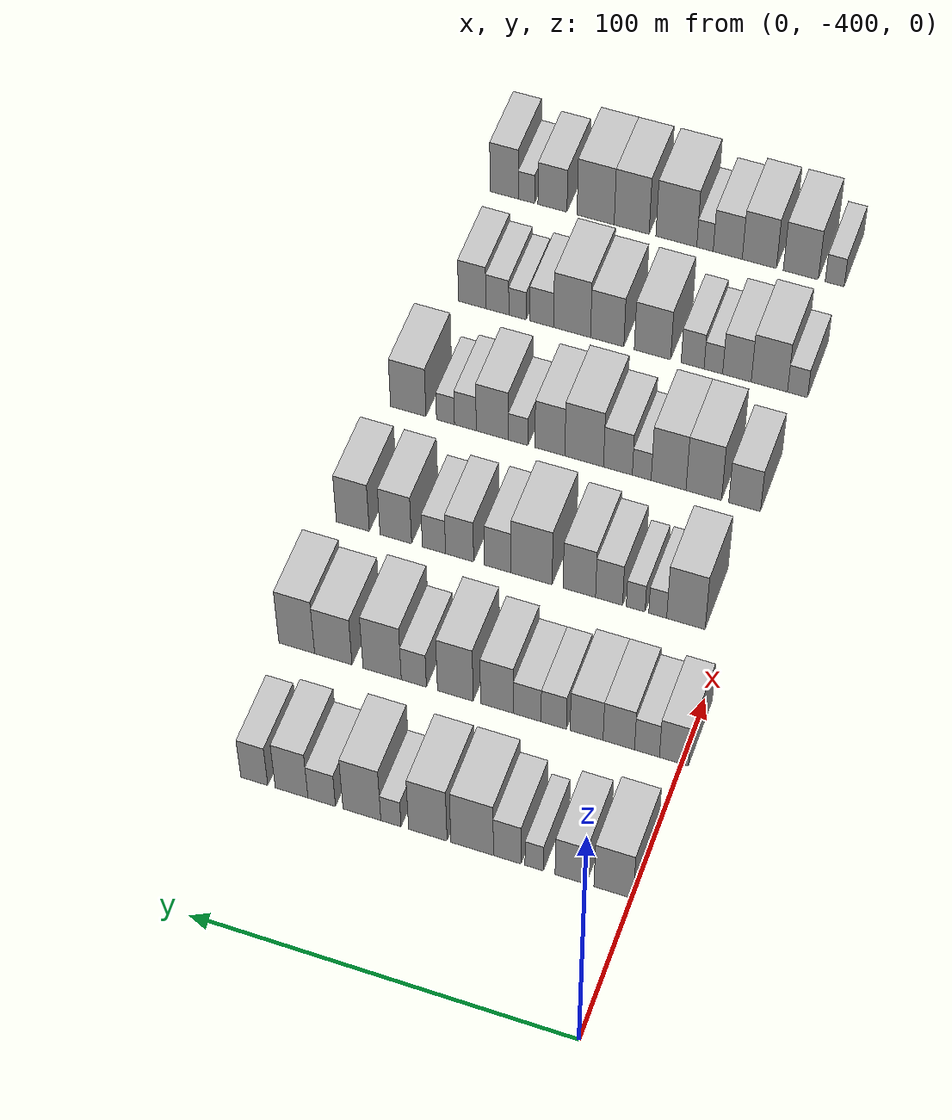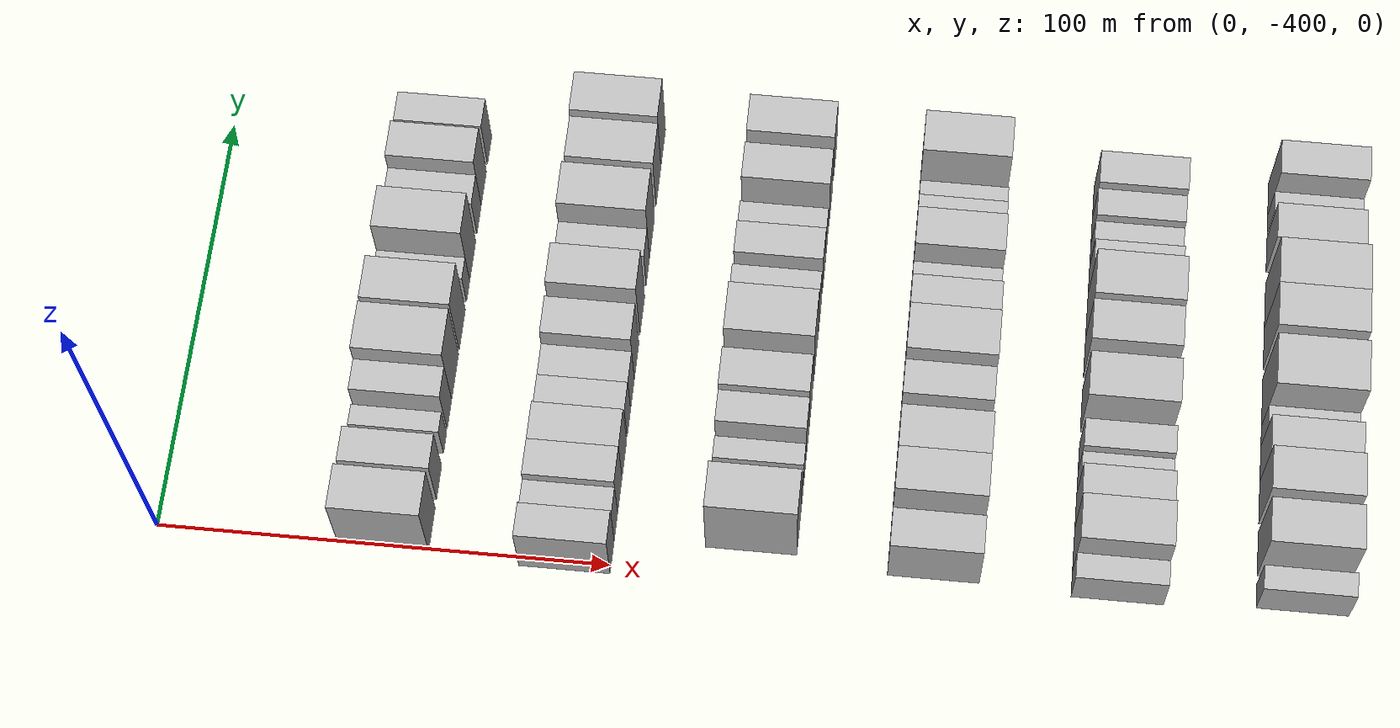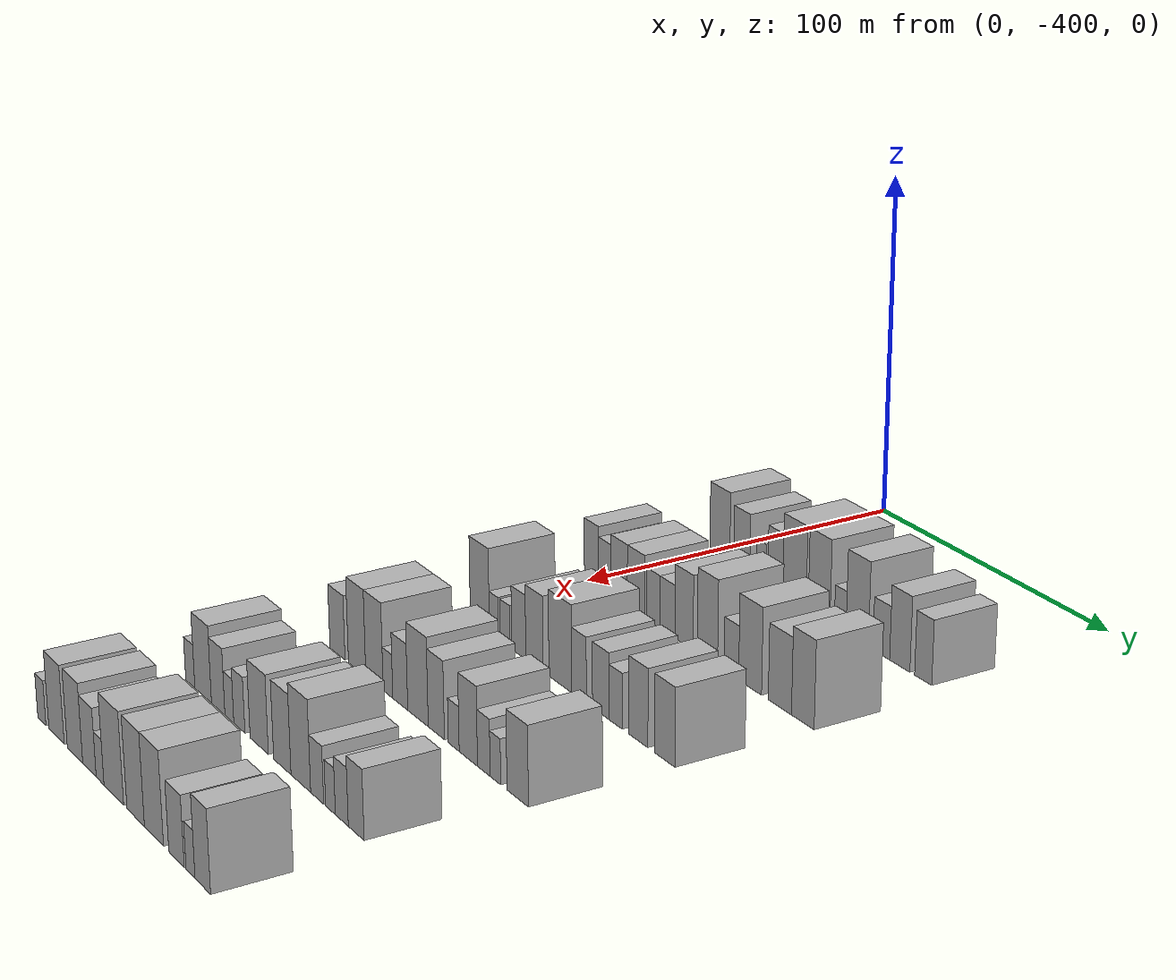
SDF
<sdf version="1.6">
 <world name="default">
  <model name="building_24">
   <static>1</static>
   <pose>50.0000 -395.3235 0 0.000000 0.000000 0.000000</pose>
   <link name="link">
    <pose>0 0 10.50 0 0 0</pose>
    <collision name="collision"><geometry><box><size>20.0000 10.1227 21.0000</size></box></geometry></collision>
    <visual name="visual">
     <cast_shadows>0</cast_shadows>
     <geometry><box><size>20.0000 10.1227 21.0000</size></box></geometry>
     <material>
      <script>
       <uri>model://HANNAS_wall/materials/scripts</uri>
       <uri>model://HANNAS_wall/materials/textures</uri>
       <name>vrc/HANNAS_wall</name>
      </script>
     </material>
    </visual>
   </link>
  </model>
  <model name="building_25">
   <static>1</static>
   <pose>50.0000 -384.2467 0 0.000000 0.000000 0.000000</pose>
   <link name="link">
    <pose>0 0 9.00 0 0 0</pose>
    <collision name="collision"><geometry><box><size>20.0000 8.0308 18.0000</size></box></geometry></collision>
    <visual name="visual">
     <cast_shadows>0</cast_shadows>
     <geometry><box><size>20.0000 8.0308 18.0000</size></box></geometry>
     <material>
      <script>
       <uri>model://HANNAS_wall/materials/scripts</uri>
       <uri>model://HANNAS_wall/materials/textures</uri>
       <name>vrc/HANNAS_wall</name>
      </script>
     </material>
    </visual>
   </link>
  </model>
  <model name="building_26">
   <static>1</static>
   <pose>50.0000 -374.8311 0 0.000000 0.000000 0.000000</pose>
   <link name="link">
    <pose>0 0 6.00 0 0 0</pose>
    <collision name="collision"><geometry><box><size>20.0000 4.8004 12.0000</size></box></geometry></collision>
    <visual name="visual">
     <cast_shadows>0</cast_shadows>
     <geometry><box><size>20.0000 4.8004 12.0000</size></box></geometry>
     <material>
      <script>
       <uri>model://HANNAS_wall/materials/scripts</uri>
       <uri>model://HANNAS_wall/materials/textures</uri>
       <name>vrc/HANNAS_wall</name>
      </script>
     </material>
    </visual>
   </link>
  </model>
  <model name="building_27">
   <static>1</static>
   <pose>50.0000 -367.8223 0 0.000000 0.000000 0.000000</pose>
   <link name="link">
    <pose>0 0 9.00 0 0 0</pose>
    <collision name="collision"><geometry><box><size>20.0000 7.2173 18.0000</size></box></geometry></collision>
    <visual name="visual">
     <cast_shadows>0</cast_shadows>
     <geometry><box><size>20.0000 7.2173 18.0000</size></box></geometry>
     <material>
      <script>
       <uri>model://HANNAS_wall/materials/scripts</uri>
       <uri>model://HANNAS_wall/materials/textures</uri>
       <name>vrc/HANNAS_wall</name>
      </script>
     </material>
    </visual>
   </link>
  </model>
  <model name="building_28">
   <static>1</static>
   <pose>50.0000 -358.6477 0 0.000000 0.000000 0.000000</pose>
   <link name="link">
    <pose>0 0 12.00 0 0 0</pose>
    <collision name="collision"><geometry><box><size>20.0000 11.1320 24.0000</size></box></geometry></collision>
    <visual name="visual">
     <cast_shadows>0</cast_shadows>
     <geometry><box><size>20.0000 11.1320 24.0000</size></box></geometry>
     <material>
      <script>
       <uri>model://HANNAS_wall/materials/scripts</uri>
       <uri>model://HANNAS_wall/materials/textures</uri>
       <name>vrc/HANNAS_wall</name>
      </script>
     </material>
    </visual>
   </link>
  </model>
  <model name="building_29">
   <static>1</static>
   <pose>50.0000 -347.0237 0 0.000000 0.000000 0.000000</pose>
   <link name="link">
    <pose>0 0 12.00 0 0 0</pose>
    <collision name="collision"><geometry><box><size>20.0000 10.1159 24.0000</size></box></geometry></collision>
    <visual name="visual">
     <cast_shadows>0</cast_shadows>
     <geometry><box><size>20.0000 10.1159 24.0000</size></box></geometry>
     <material>
      <script>
       <uri>model://HANNAS_wall/materials/scripts</uri>
       <uri>model://HANNAS_wall/materials/textures</uri>
       <name>vrc/HANNAS_wall</name>
      </script>
     </material>
    </visual>
   </link>
  </model>
  <model name="building_30">
   <static>1</static>
   <pose>50.0000 -337.2994 0 0.000000 0.000000 0.000000</pose>
   <link name="link">
    <pose>0 0 6.00 0 0 0</pose>
    <collision name="collision"><geometry><box><size>20.0000 5.3329 12.0000</size></box></geometry></collision>
    <visual name="visual">
     <cast_shadows>0</cast_shadows>
     <geometry><box><size>20.0000 5.3329 12.0000</size></box></geometry>
     <material>
      <script>
       <uri>model://HANNAS_wall/materials/scripts</uri>
       <uri>model://HANNAS_wall/materials/textures</uri>
       <name>vrc/HANNAS_wall</name>
      </script>
     </material>
    </visual>
   </link>
  </model>
  <model name="building_31">
   <static>1</static>
   <pose>50.0000 -329.6168 0 0.000000 0.000000 0.000000</pose>
   <link name="link">
    <pose>0 0 12.00 0 0 0</pose>
    <collision name="collision"><geometry><box><size>20.0000 10.0321 24.0000</size></box></geometry></collision>
    <visual name="visual">
     <cast_shadows>0</cast_shadows>
     <geometry><box><size>20.0000 10.0321 24.0000</size></box></geometry>
     <material>
      <script>
       <uri>model://HANNAS_wall/materials/scripts</uri>
       <uri>model://HANNAS_wall/materials/textures</uri>
       <name>vrc/HANNAS_wall</name>
      </script>
     </material>
    </visual>
   </link>
  </model>
  <model name="building_32">
   <static>1</static>
   <pose>50.0000 -318.9343 0 0.000000 0.000000 0.000000</pose>
   <link name="link">
    <pose>0 0 7.50 0 0 0</pose>
    <collision name="collision"><geometry><box><size>20.0000 7.3329 15.0000</size></box></geometry></collision>
    <visual name="visual">
     <cast_shadows>0</cast_shadows>
     <geometry><box><size>20.0000 7.3329 15.0000</size></box></geometry>
     <material>
      <script>
       <uri>model://HANNAS_wall/materials/scripts</uri>
       <uri>model://HANNAS_wall/materials/textures</uri>
       <name>vrc/HANNAS_wall</name>
      </script>
     </material>
    </visual>
   </link>
  </model>
  <model name="building_33">
   <static>1</static>
   <pose>50.0000 -310.8922 0 0.000000 0.000000 0.000000</pose>
   <link name="link">
    <pose>0 0 10.50 0 0 0</pose>
    <collision name="collision"><geometry><box><size>20.0000 8.7513 21.0000</size></box></geometry></collision>
    <visual name="visual">
     <cast_shadows>0</cast_shadows>
     <geometry><box><size>20.0000 8.7513 21.0000</size></box></geometry>
     <material>
      <script>
       <uri>model://HANNAS_wall/materials/scripts</uri>
       <uri>model://HANNAS_wall/materials/textures</uri>
       <name>vrc/HANNAS_wall</name>
      </script>
     </material>
    </visual>
   </link>
  </model>
  <model name="building_34">
   <static>1</static>
   <pose>50.0000 -300.9000 0 0.000000 0.000000 0.000000</pose>
   <link name="link">
    <pose>0 0 9.00 0 0 0</pose>
    <collision name="collision"><geometry><box><size>20.0000 7.2331 18.0000</size></box></geometry></collision>
    <visual name="visual">
     <cast_shadows>0</cast_shadows>
     <geometry><box><size>20.0000 7.2331 18.0000</size></box></geometry>
     <material>
      <script>
       <uri>model://HANNAS_wall/materials/scripts</uri>
       <uri>model://HANNAS_wall/materials/textures</uri>
       <name>vrc/HANNAS_wall</name>
      </script>
     </material>
    </visual>
   </link>
  </model>
  <model name="building_153">
   <static>1</static>
   <pose>90.0000 -398.0143 0 0.000000 0.000000 0.000000</pose>
   <link name="link">
    <pose>0 0 9.00 0 0 0</pose>
    <collision name="collision"><geometry><box><size>20.0000 7.6323 18.0000</size></box></geometry></collision>
    <visual name="visual">
     <cast_shadows>0</cast_shadows>
     <geometry><box><size>20.0000 7.6323 18.0000</size></box></geometry>
     <material>
      <script>
       <uri>model://HANNAS_wall/materials/scripts</uri>
       <uri>model://HANNAS_wall/materials/textures</uri>
       <name>vrc/HANNAS_wall</name>
      </script>
     </material>
    </visual>
   </link>
  </model>
  <model name="building_154">
   <static>1</static>
   <pose>90.0000 -390.9142 0 0.000000 0.000000 0.000000</pose>
   <link name="link">
    <pose>0 0 7.50 0 0 0</pose>
    <collision name="collision"><geometry><box><size>20.0000 6.5679 15.0000</size></box></geometry></collision>
    <visual name="visual">
     <cast_shadows>0</cast_shadows>
     <geometry><box><size>20.0000 6.5679 15.0000</size></box></geometry>
     <material>
      <script>
       <uri>model://HANNAS_wall/materials/scripts</uri>
       <uri>model://HANNAS_wall/materials/textures</uri>
       <name>vrc/HANNAS_wall</name>
      </script>
     </material>
    </visual>
   </link>
  </model>
  <model name="building_155">
   <static>1</static>
   <pose>90.0000 -383.4702 0 0.000000 0.000000 0.000000</pose>
   <link name="link">
    <pose>0 0 9.00 0 0 0</pose>
    <collision name="collision"><geometry><box><size>20.0000 8.3200 18.0000</size></box></geometry></collision>
    <visual name="visual">
     <cast_shadows>0</cast_shadows>
     <geometry><box><size>20.0000 8.3200 18.0000</size></box></geometry>
     <material>
      <script>
       <uri>model://HANNAS_wall/materials/scripts</uri>
       <uri>model://HANNAS_wall/materials/textures</uri>
       <name>vrc/HANNAS_wall</name>
      </script>
     </material>
    </visual>
   </link>
  </model>
  <model name="building_156">
   <static>1</static>
   <pose>90.0000 -374.9344 0 0.000000 0.000000 0.000000</pose>
   <link name="link">
    <pose>0 0 9.00 0 0 0</pose>
    <collision name="collision"><geometry><box><size>20.0000 8.7517 18.0000</size></box></geometry></collision>
    <visual name="visual">
     <cast_shadows>0</cast_shadows>
     <geometry><box><size>20.0000 8.7517 18.0000</size></box></geometry>
     <material>
      <script>
       <uri>model://HANNAS_wall/materials/scripts</uri>
       <uri>model://HANNAS_wall/materials/textures</uri>
       <name>vrc/HANNAS_wall</name>
      </script>
     </material>
    </visual>
   </link>
  </model>
  <model name="building_157">
   <static>1</static>
   <pose>90.0000 -366.1807 0 0.000000 0.000000 0.000000</pose>
   <link name="link">
    <pose>0 0 7.50 0 0 0</pose>
    <collision name="collision"><geometry><box><size>20.0000 6.7557 15.0000</size></box></geometry></collision>
    <visual name="visual">
     <cast_shadows>0</cast_shadows>
     <geometry><box><size>20.0000 6.7557 15.0000</size></box></geometry>
     <material>
      <script>
       <uri>model://HANNAS_wall/materials/scripts</uri>
       <uri>model://HANNAS_wall/materials/textures</uri>
       <name>vrc/HANNAS_wall</name>
      </script>
     </material>
    </visual>
   </link>
  </model>
  <model name="building_158">
   <static>1</static>
   <pose>90.0000 -359.0996 0 0.000000 0.000000 0.000000</pose>
   <link name="link">
    <pose>0 0 7.50 0 0 0</pose>
    <collision name="collision"><geometry><box><size>20.0000 7.4064 15.0000</size></box></geometry></collision>
    <visual name="visual">
     <cast_shadows>0</cast_shadows>
     <geometry><box><size>20.0000 7.4064 15.0000</size></box></geometry>
     <material>
      <script>
       <uri>model://HANNAS_wall/materials/scripts</uri>
       <uri>model://HANNAS_wall/materials/textures</uri>
       <name>vrc/HANNAS_wall</name>
      </script>
     </material>
    </visual>
   </link>
  </model>
  <model name="building_159">
   <static>1</static>
   <pose>90.0000 -350.9977 0 0.000000 0.000000 0.000000</pose>
   <link name="link">
    <pose>0 0 10.50 0 0 0</pose>
    <collision name="collision"><geometry><box><size>20.0000 8.7975 21.0000</size></box></geometry></collision>
    <visual name="visual">
     <cast_shadows>0</cast_shadows>
     <geometry><box><size>20.0000 8.7975 21.0000</size></box></geometry>
     <material>
      <script>
       <uri>model://HANNAS_wall/materials/scripts</uri>
       <uri>model://HANNAS_wall/materials/textures</uri>
       <name>vrc/HANNAS_wall</name>
      </script>
     </material>
    </visual>
   </link>
  </model>
  <model name="building_160">
   <static>1</static>
   <pose>90.0000 -339.7776 0 0.000000 0.000000 0.000000</pose>
   <link name="link">
    <pose>0 0 12.00 0 0 0</pose>
    <collision name="collision"><geometry><box><size>20.0000 9.6427 24.0000</size></box></geometry></collision>
    <visual name="visual">
     <cast_shadows>0</cast_shadows>
     <geometry><box><size>20.0000 9.6427 24.0000</size></box></geometry>
     <material>
      <script>
       <uri>model://HANNAS_wall/materials/scripts</uri>
       <uri>model://HANNAS_wall/materials/textures</uri>
       <name>vrc/HANNAS_wall</name>
      </script>
     </material>
    </visual>
   </link>
  </model>
  <model name="building_161">
   <static>1</static>
   <pose>90.0000 -328.5496 0 0.000000 0.000000 0.000000</pose>
   <link name="link">
    <pose>0 0 7.50 0 0 0</pose>
    <collision name="collision"><geometry><box><size>20.0000 6.8134 15.0000</size></box></geometry></collision>
    <visual name="visual">
     <cast_shadows>0</cast_shadows>
     <geometry><box><size>20.0000 6.8134 15.0000</size></box></geometry>
     <material>
      <script>
       <uri>model://HANNAS_wall/materials/scripts</uri>
       <uri>model://HANNAS_wall/materials/textures</uri>
       <name>vrc/HANNAS_wall</name>
      </script>
     </material>
    </visual>
   </link>
  </model>
  <model name="building_162">
   <static>1</static>
   <pose>90.0000 -319.9287 0 0.000000 0.000000 0.000000</pose>
   <link name="link">
    <pose>0 0 12.00 0 0 0</pose>
    <collision name="collision"><geometry><box><size>20.0000 10.4284 24.0000</size></box></geometry></collision>
    <visual name="visual">
     <cast_shadows>0</cast_shadows>
     <geometry><box><size>20.0000 10.4284 24.0000</size></box></geometry>
     <material>
      <script>
       <uri>model://HANNAS_wall/materials/scripts</uri>
       <uri>model://HANNAS_wall/materials/textures</uri>
       <name>vrc/HANNAS_wall</name>
      </script>
     </material>
    </visual>
   </link>
  </model>
  <model name="building_163">
   <static>1</static>
   <pose>90.0000 -306.5840 0 0.000000 0.000000 0.000000</pose>
   <link name="link">
    <pose>0 0 10.50 0 0 0</pose>
    <collision name="collision"><geometry><box><size>20.0000 10.2610 21.0000</size></box></geometry></collision>
    <visual name="visual">
     <cast_shadows>0</cast_shadows>
     <geometry><box><size>20.0000 10.2610 21.0000</size></box></geometry>
     <material>
      <script>
       <uri>model://HANNAS_wall/materials/scripts</uri>
       <uri>model://HANNAS_wall/materials/textures</uri>
       <name>vrc/HANNAS_wall</name>
      </script>
     </material>
    </visual>
   </link>
  </model>
  <model name="building_164">
   <static>1</static>
   <pose>90.0000 -296.5458 0 0.000000 0.000000 0.000000</pose>
   <link name="link">
    <pose>0 0 12.00 0 0 0</pose>
    <collision name="collision"><geometry><box><size>20.0000 9.8153 24.0000</size></box></geometry></collision>
    <visual name="visual">
     <cast_shadows>0</cast_shadows>
     <geometry><box><size>20.0000 9.8153 24.0000</size></box></geometry>
     <material>
      <script>
       <uri>model://HANNAS_wall/materials/scripts</uri>
       <uri>model://HANNAS_wall/materials/textures</uri>
       <name>vrc/HANNAS_wall</name>
      </script>
     </material>
    </visual>
   </link>
  </model>
  <model name="building_295">
   <static>1</static>
   <pose>130.0000 -388.5037 0 0.000000 0.000000 0.000000</pose>
   <link name="link">
    <pose>0 0 12.00 0 0 0</pose>
    <collision name="collision"><geometry><box><size>20.0000 10.4047 24.0000</size></box></geometry></collision>
    <visual name="visual">
     <cast_shadows>0</cast_shadows>
     <geometry><box><size>20.0000 10.4047 24.0000</size></box></geometry>
     <material>
      <script>
       <uri>model://HANNAS_wall/materials/scripts</uri>
       <uri>model://HANNAS_wall/materials/textures</uri>
       <name>vrc/HANNAS_wall</name>
      </script>
     </material>
    </visual>
   </link>
  </model>
  <model name="building_296">
   <static>1</static>
   <pose>130.0000 -380.8718 0 0.000000 0.000000 0.000000</pose>
   <link name="link">
    <pose>0 0 6.00 0 0 0</pose>
    <collision name="collision"><geometry><box><size>20.0000 4.8590 12.0000</size></box></geometry></collision>
    <visual name="visual">
     <cast_shadows>0</cast_shadows>
     <geometry><box><size>20.0000 4.8590 12.0000</size></box></geometry>
     <material>
      <script>
       <uri>model://HANNAS_wall/materials/scripts</uri>
       <uri>model://HANNAS_wall/materials/textures</uri>
       <name>vrc/HANNAS_wall</name>
      </script>
     </material>
    </visual>
   </link>
  </model>
  <model name="building_297">
   <static>1</static>
   <pose>130.0000 -374.8850 0 0.000000 0.000000 0.000000</pose>
   <link name="link">
    <pose>0 0 6.00 0 0 0</pose>
    <collision name="collision"><geometry><box><size>20.0000 5.1148 12.0000</size></box></geometry></collision>
    <visual name="visual">
     <cast_shadows>0</cast_shadows>
     <geometry><box><size>20.0000 5.1148 12.0000</size></box></geometry>
     <material>
      <script>
       <uri>model://HANNAS_wall/materials/scripts</uri>
       <uri>model://HANNAS_wall/materials/textures</uri>
       <name>vrc/HANNAS_wall</name>
      </script>
     </material>
    </visual>
   </link>
  </model>
  <model name="building_298">
   <static>1</static>
   <pose>130.0000 -367.6358 0 0.000000 0.000000 0.000000</pose>
   <link name="link">
    <pose>0 0 9.00 0 0 0</pose>
    <collision name="collision"><geometry><box><size>20.0000 7.3835 18.0000</size></box></geometry></collision>
    <visual name="visual">
     <cast_shadows>0</cast_shadows>
     <geometry><box><size>20.0000 7.3835 18.0000</size></box></geometry>
     <material>
      <script>
       <uri>model://HANNAS_wall/materials/scripts</uri>
       <uri>model://HANNAS_wall/materials/textures</uri>
       <name>vrc/HANNAS_wall</name>
      </script>
     </material>
    </visual>
   </link>
  </model>
  <model name="building_299">
   <static>1</static>
   <pose>130.0000 -359.5038 0 0.000000 0.000000 0.000000</pose>
   <link name="link">
    <pose>0 0 10.50 0 0 0</pose>
    <collision name="collision"><geometry><box><size>20.0000 8.8806 21.0000</size></box></geometry></collision>
    <visual name="visual">
     <cast_shadows>0</cast_shadows>
     <geometry><box><size>20.0000 8.8806 21.0000</size></box></geometry>
     <material>
      <script>
       <uri>model://HANNAS_wall/materials/scripts</uri>
       <uri>model://HANNAS_wall/materials/textures</uri>
       <name>vrc/HANNAS_wall</name>
      </script>
     </material>
    </visual>
   </link>
  </model>
  <model name="building_300">
   <static>1</static>
   <pose>130.0000 -346.3968 0 0.000000 0.000000 0.000000</pose>
   <link name="link">
    <pose>0 0 12.00 0 0 0</pose>
    <collision name="collision"><geometry><box><size>20.0000 11.3335 24.0000</size></box></geometry></collision>
    <visual name="visual">
     <cast_shadows>0</cast_shadows>
     <geometry><box><size>20.0000 11.3335 24.0000</size></box></geometry>
     <material>
      <script>
       <uri>model://HANNAS_wall/materials/scripts</uri>
       <uri>model://HANNAS_wall/materials/textures</uri>
       <name>vrc/HANNAS_wall</name>
      </script>
     </material>
    </visual>
   </link>
  </model>
  <model name="building_301">
   <static>1</static>
   <pose>130.0000 -337.0668 0 0.000000 0.000000 0.000000</pose>
   <link name="link">
    <pose>0 0 9.00 0 0 0</pose>
    <collision name="collision"><geometry><box><size>20.0000 7.3266 18.0000</size></box></geometry></collision>
    <visual name="visual">
     <cast_shadows>0</cast_shadows>
     <geometry><box><size>20.0000 7.3266 18.0000</size></box></geometry>
     <material>
      <script>
       <uri>model://HANNAS_wall/materials/scripts</uri>
       <uri>model://HANNAS_wall/materials/textures</uri>
       <name>vrc/HANNAS_wall</name>
      </script>
     </material>
    </visual>
   </link>
  </model>
  <model name="building_302">
   <static>1</static>
   <pose>130.0000 -326.5060 0 0.000000 0.000000 0.000000</pose>
   <link name="link">
    <pose>0 0 9.00 0 0 0</pose>
    <collision name="collision"><geometry><box><size>20.0000 7.7950 18.0000</size></box></geometry></collision>
    <visual name="visual">
     <cast_shadows>0</cast_shadows>
     <geometry><box><size>20.0000 7.7950 18.0000</size></box></geometry>
     <material>
      <script>
       <uri>model://HANNAS_wall/materials/scripts</uri>
       <uri>model://HANNAS_wall/materials/textures</uri>
       <name>vrc/HANNAS_wall</name>
      </script>
     </material>
    </visual>
   </link>
  </model>
  <model name="building_303">
   <static>1</static>
   <pose>130.0000 -319.3804 0 0.000000 0.000000 0.000000</pose>
   <link name="link">
    <pose>0 0 7.50 0 0 0</pose>
    <collision name="collision"><geometry><box><size>20.0000 6.4562 15.0000</size></box></geometry></collision>
    <visual name="visual">
     <cast_shadows>0</cast_shadows>
     <geometry><box><size>20.0000 6.4562 15.0000</size></box></geometry>
     <material>
      <script>
       <uri>model://HANNAS_wall/materials/scripts</uri>
       <uri>model://HANNAS_wall/materials/textures</uri>
       <name>vrc/HANNAS_wall</name>
      </script>
     </material>
    </visual>
   </link>
  </model>
  <model name="building_304">
   <static>1</static>
   <pose>130.0000 -308.7238 0 0.000000 0.000000 0.000000</pose>
   <link name="link">
    <pose>0 0 10.50 0 0 0</pose>
    <collision name="collision"><geometry><box><size>20.0000 8.8570 21.0000</size></box></geometry></collision>
    <visual name="visual">
     <cast_shadows>0</cast_shadows>
     <geometry><box><size>20.0000 8.8570 21.0000</size></box></geometry>
     <material>
      <script>
       <uri>model://HANNAS_wall/materials/scripts</uri>
       <uri>model://HANNAS_wall/materials/textures</uri>
       <name>vrc/HANNAS_wall</name>
      </script>
     </material>
    </visual>
   </link>
  </model>
  <model name="building_305">
   <static>1</static>
   <pose>130.0000 -296.6509 0 0.000000 0.000000 0.000000</pose>
   <link name="link">
    <pose>0 0 10.50 0 0 0</pose>
    <collision name="collision"><geometry><box><size>20.0000 9.2887 21.0000</size></box></geometry></collision>
    <visual name="visual">
     <cast_shadows>0</cast_shadows>
     <geometry><box><size>20.0000 9.2887 21.0000</size></box></geometry>
     <material>
      <script>
       <uri>model://HANNAS_wall/materials/scripts</uri>
       <uri>model://HANNAS_wall/materials/textures</uri>
       <name>vrc/HANNAS_wall</name>
      </script>
     </material>
    </visual>
   </link>
  </model>
  <model name="building_433">
   <static>1</static>
   <pose>170.0000 -392.0845 0 0.000000 0.000000 0.000000</pose>
   <link name="link">
    <pose>0 0 9.00 0 0 0</pose>
    <collision name="collision"><geometry><box><size>20.0000 8.7571 18.0000</size></box></geometry></collision>
    <visual name="visual">
     <cast_shadows>0</cast_shadows>
     <geometry><box><size>20.0000 8.7571 18.0000</size></box></geometry>
     <material>
      <script>
       <uri>model://HANNAS_wall/materials/scripts</uri>
       <uri>model://HANNAS_wall/materials/textures</uri>
       <name>vrc/HANNAS_wall</name>
      </script>
     </material>
    </visual>
   </link>
  </model>
  <model name="building_434">
   <static>1</static>
   <pose>170.0000 -380.7752 0 0.000000 0.000000 0.000000</pose>
   <link name="link">
    <pose>0 0 12.00 0 0 0</pose>
    <collision name="collision"><geometry><box><size>20.0000 9.8614 24.0000</size></box></geometry></collision>
    <visual name="visual">
     <cast_shadows>0</cast_shadows>
     <geometry><box><size>20.0000 9.8614 24.0000</size></box></geometry>
     <material>
      <script>
       <uri>model://HANNAS_wall/materials/scripts</uri>
       <uri>model://HANNAS_wall/materials/textures</uri>
       <name>vrc/HANNAS_wall</name>
      </script>
     </material>
    </visual>
   </link>
  </model>
  <model name="building_435">
   <static>1</static>
   <pose>170.0000 -370.9908 0 0.000000 0.000000 0.000000</pose>
   <link name="link">
    <pose>0 0 12.00 0 0 0</pose>
    <collision name="collision"><geometry><box><size>20.0000 9.7075 24.0000</size></box></geometry></collision>
    <visual name="visual">
     <cast_shadows>0</cast_shadows>
     <geometry><box><size>20.0000 9.7075 24.0000</size></box></geometry>
     <material>
      <script>
       <uri>model://HANNAS_wall/materials/scripts</uri>
       <uri>model://HANNAS_wall/materials/textures</uri>
       <name>vrc/HANNAS_wall</name>
      </script>
     </material>
    </visual>
   </link>
  </model>
  <model name="building_436">
   <static>1</static>
   <pose>170.0000 -363.5128 0 0.000000 0.000000 0.000000</pose>
   <link name="link">
    <pose>0 0 6.00 0 0 0</pose>
    <collision name="collision"><geometry><box><size>20.0000 5.2486 12.0000</size></box></geometry></collision>
    <visual name="visual">
     <cast_shadows>0</cast_shadows>
     <geometry><box><size>20.0000 5.2486 12.0000</size></box></geometry>
     <material>
      <script>
       <uri>model://HANNAS_wall/materials/scripts</uri>
       <uri>model://HANNAS_wall/materials/textures</uri>
       <name>vrc/HANNAS_wall</name>
      </script>
     </material>
    </visual>
   </link>
  </model>
  <model name="building_437">
   <static>1</static>
   <pose>170.0000 -356.8444 0 0.000000 0.000000 0.000000</pose>
   <link name="link">
    <pose>0 0 9.00 0 0 0</pose>
    <collision name="collision"><geometry><box><size>20.0000 8.0882 18.0000</size></box></geometry></collision>
    <visual name="visual">
     <cast_shadows>0</cast_shadows>
     <geometry><box><size>20.0000 8.0882 18.0000</size></box></geometry>
     <material>
      <script>
       <uri>model://HANNAS_wall/materials/scripts</uri>
       <uri>model://HANNAS_wall/materials/textures</uri>
       <name>vrc/HANNAS_wall</name>
      </script>
     </material>
    </visual>
   </link>
  </model>
  <model name="building_438">
   <static>1</static>
   <pose>170.0000 -347.3635 0 0.000000 0.000000 0.000000</pose>
   <link name="link">
    <pose>0 0 12.00 0 0 0</pose>
    <collision name="collision"><geometry><box><size>20.0000 10.8737 24.0000</size></box></geometry></collision>
    <visual name="visual">
     <cast_shadows>0</cast_shadows>
     <geometry><box><size>20.0000 10.8737 24.0000</size></box></geometry>
     <material>
      <script>
       <uri>model://HANNAS_wall/materials/scripts</uri>
       <uri>model://HANNAS_wall/materials/textures</uri>
       <name>vrc/HANNAS_wall</name>
      </script>
     </material>
    </visual>
   </link>
  </model>
  <model name="building_439">
   <static>1</static>
   <pose>170.0000 -337.7231 0 0.000000 0.000000 0.000000</pose>
   <link name="link">
    <pose>0 0 10.50 0 0 0</pose>
    <collision name="collision"><geometry><box><size>20.0000 8.4072 21.0000</size></box></geometry></collision>
    <visual name="visual">
     <cast_shadows>0</cast_shadows>
     <geometry><box><size>20.0000 8.4072 21.0000</size></box></geometry>
     <material>
      <script>
       <uri>model://HANNAS_wall/materials/scripts</uri>
       <uri>model://HANNAS_wall/materials/textures</uri>
       <name>vrc/HANNAS_wall</name>
      </script>
     </material>
    </visual>
   </link>
  </model>
  <model name="building_440">
   <static>1</static>
   <pose>170.0000 -328.7533 0 0.000000 0.000000 0.000000</pose>
   <link name="link">
    <pose>0 0 6.00 0 0 0</pose>
    <collision name="collision"><geometry><box><size>20.0000 5.5322 12.0000</size></box></geometry></collision>
    <visual name="visual">
     <cast_shadows>0</cast_shadows>
     <geometry><box><size>20.0000 5.5322 12.0000</size></box></geometry>
     <material>
      <script>
       <uri>model://HANNAS_wall/materials/scripts</uri>
       <uri>model://HANNAS_wall/materials/textures</uri>
       <name>vrc/HANNAS_wall</name>
      </script>
     </material>
    </visual>
   </link>
  </model>
  <model name="building_441">
   <static>1</static>
   <pose>170.0000 -321.4134 0 0.000000 0.000000 0.000000</pose>
   <link name="link">
    <pose>0 0 10.50 0 0 0</pose>
    <collision name="collision"><geometry><box><size>20.0000 9.1477 21.0000</size></box></geometry></collision>
    <visual name="visual">
     <cast_shadows>0</cast_shadows>
     <geometry><box><size>20.0000 9.1477 21.0000</size></box></geometry>
     <material>
      <script>
       <uri>model://HANNAS_wall/materials/scripts</uri>
       <uri>model://HANNAS_wall/materials/textures</uri>
       <name>vrc/HANNAS_wall</name>
      </script>
     </material>
    </visual>
   </link>
  </model>
  <model name="building_442">
   <static>1</static>
   <pose>170.0000 -313.7286 0 0.000000 0.000000 0.000000</pose>
   <link name="link">
    <pose>0 0 7.50 0 0 0</pose>
    <collision name="collision"><geometry><box><size>20.0000 6.2219 15.0000</size></box></geometry></collision>
    <visual name="visual">
     <cast_shadows>0</cast_shadows>
     <geometry><box><size>20.0000 6.2219 15.0000</size></box></geometry>
     <material>
      <script>
       <uri>model://HANNAS_wall/materials/scripts</uri>
       <uri>model://HANNAS_wall/materials/textures</uri>
       <name>vrc/HANNAS_wall</name>
      </script>
     </material>
    </visual>
   </link>
  </model>
  <model name="building_443">
   <static>1</static>
   <pose>170.0000 -308.0451 0 0.000000 0.000000 0.000000</pose>
   <link name="link">
    <pose>0 0 6.00 0 0 0</pose>
    <collision name="collision"><geometry><box><size>20.0000 5.1451 12.0000</size></box></geometry></collision>
    <visual name="visual">
     <cast_shadows>0</cast_shadows>
     <geometry><box><size>20.0000 5.1451 12.0000</size></box></geometry>
     <material>
      <script>
       <uri>model://HANNAS_wall/materials/scripts</uri>
       <uri>model://HANNAS_wall/materials/textures</uri>
       <name>vrc/HANNAS_wall</name>
      </script>
     </material>
    </visual>
   </link>
  </model>
  <model name="building_444">
   <static>1</static>
   <pose>170.0000 -297.3879 0 0.000000 0.000000 0.000000</pose>
   <link name="link">
    <pose>0 0 10.50 0 0 0</pose>
    <collision name="collision"><geometry><box><size>20.0000 10.1693 21.0000</size></box></geometry></collision>
    <visual name="visual">
     <cast_shadows>0</cast_shadows>
     <geometry><box><size>20.0000 10.1693 21.0000</size></box></geometry>
     <material>
      <script>
       <uri>model://HANNAS_wall/materials/scripts</uri>
       <uri>model://HANNAS_wall/materials/textures</uri>
       <name>vrc/HANNAS_wall</name>
      </script>
     </material>
    </visual>
   </link>
  </model>
  <model name="building_568">
   <static>1</static>
   <pose>210.0000 -394.8046 0 0.000000 0.000000 0.000000</pose>
   <link name="link">
    <pose>0 0 6.00 0 0 0</pose>
    <collision name="collision"><geometry><box><size>20.0000 5.6917 12.0000</size></box></geometry></collision>
    <visual name="visual">
     <cast_shadows>0</cast_shadows>
     <geometry><box><size>20.0000 5.6917 12.0000</size></box></geometry>
     <material>
      <script>
       <uri>model://HANNAS_wall/materials/scripts</uri>
       <uri>model://HANNAS_wall/materials/textures</uri>
       <name>vrc/HANNAS_wall</name>
      </script>
     </material>
    </visual>
   </link>
  </model>
  <model name="building_569">
   <static>1</static>
   <pose>210.0000 -386.8399 0 0.000000 0.000000 0.000000</pose>
   <link name="link">
    <pose>0 0 10.50 0 0 0</pose>
    <collision name="collision"><geometry><box><size>20.0000 10.2375 21.0000</size></box></geometry></collision>
    <visual name="visual">
     <cast_shadows>0</cast_shadows>
     <geometry><box><size>20.0000 10.2375 21.0000</size></box></geometry>
     <material>
      <script>
       <uri>model://HANNAS_wall/materials/scripts</uri>
       <uri>model://HANNAS_wall/materials/textures</uri>
       <name>vrc/HANNAS_wall</name>
      </script>
     </material>
    </visual>
   </link>
  </model>
  <model name="building_570">
   <static>1</static>
   <pose>210.0000 -377.6664 0 0.000000 0.000000 0.000000</pose>
   <link name="link">
    <pose>0 0 9.00 0 0 0</pose>
    <collision name="collision"><geometry><box><size>20.0000 8.1096 18.0000</size></box></geometry></collision>
    <visual name="visual">
     <cast_shadows>0</cast_shadows>
     <geometry><box><size>20.0000 8.1096 18.0000</size></box></geometry>
     <material>
      <script>
       <uri>model://HANNAS_wall/materials/scripts</uri>
       <uri>model://HANNAS_wall/materials/textures</uri>
       <name>vrc/HANNAS_wall</name>
      </script>
     </material>
    </visual>
   </link>
  </model>
  <model name="building_571">
   <static>1</static>
   <pose>210.0000 -370.9715 0 0.000000 0.000000 0.000000</pose>
   <link name="link">
    <pose>0 0 6.00 0 0 0</pose>
    <collision name="collision"><geometry><box><size>20.0000 5.2802 12.0000</size></box></geometry></collision>
    <visual name="visual">
     <cast_shadows>0</cast_shadows>
     <geometry><box><size>20.0000 5.2802 12.0000</size></box></geometry>
     <material>
      <script>
       <uri>model://HANNAS_wall/materials/scripts</uri>
       <uri>model://HANNAS_wall/materials/textures</uri>
       <name>vrc/HANNAS_wall</name>
      </script>
     </material>
    </visual>
   </link>
  </model>
  <model name="building_572">
   <static>1</static>
   <pose>210.0000 -365.0639 0 0.000000 0.000000 0.000000</pose>
   <link name="link">
    <pose>0 0 7.50 0 0 0</pose>
    <collision name="collision"><geometry><box><size>20.0000 6.5351 15.0000</size></box></geometry></collision>
    <visual name="visual">
     <cast_shadows>0</cast_shadows>
     <geometry><box><size>20.0000 6.5351 15.0000</size></box></geometry>
     <material>
      <script>
       <uri>model://HANNAS_wall/materials/scripts</uri>
       <uri>model://HANNAS_wall/materials/textures</uri>
       <name>vrc/HANNAS_wall</name>
      </script>
     </material>
    </visual>
   </link>
  </model>
  <model name="building_573">
   <static>1</static>
   <pose>210.0000 -353.5800 0 0.000000 0.000000 0.000000</pose>
   <link name="link">
    <pose>0 0 10.50 0 0 0</pose>
    <collision name="collision"><geometry><box><size>20.0000 10.4326 21.0000</size></box></geometry></collision>
    <visual name="visual">
     <cast_shadows>0</cast_shadows>
     <geometry><box><size>20.0000 10.4326 21.0000</size></box></geometry>
     <material>
      <script>
       <uri>model://HANNAS_wall/materials/scripts</uri>
       <uri>model://HANNAS_wall/materials/textures</uri>
       <name>vrc/HANNAS_wall</name>
      </script>
     </material>
    </visual>
   </link>
  </model>
  <model name="building_574">
   <static>1</static>
   <pose>210.0000 -340.5528 0 0.000000 0.000000 0.000000</pose>
   <link name="link">
    <pose>0 0 10.50 0 0 0</pose>
    <collision name="collision"><geometry><box><size>20.0000 9.6219 21.0000</size></box></geometry></collision>
    <visual name="visual">
     <cast_shadows>0</cast_shadows>
     <geometry><box><size>20.0000 9.6219 21.0000</size></box></geometry>
     <material>
      <script>
       <uri>model://HANNAS_wall/materials/scripts</uri>
       <uri>model://HANNAS_wall/materials/textures</uri>
       <name>vrc/HANNAS_wall</name>
      </script>
     </material>
    </visual>
   </link>
  </model>
  <model name="building_575">
   <static>1</static>
   <pose>210.0000 -330.4021 0 0.000000 0.000000 0.000000</pose>
   <link name="link">
    <pose>0 0 12.00 0 0 0</pose>
    <collision name="collision"><geometry><box><size>20.0000 10.6793 24.0000</size></box></geometry></collision>
    <visual name="visual">
     <cast_shadows>0</cast_shadows>
     <geometry><box><size>20.0000 10.6793 24.0000</size></box></geometry>
     <material>
      <script>
       <uri>model://HANNAS_wall/materials/scripts</uri>
       <uri>model://HANNAS_wall/materials/textures</uri>
       <name>vrc/HANNAS_wall</name>
      </script>
     </material>
    </visual>
   </link>
  </model>
  <model name="building_576">
   <static>1</static>
   <pose>210.0000 -321.5930 0 0.000000 0.000000 0.000000</pose>
   <link name="link">
    <pose>0 0 7.50 0 0 0</pose>
    <collision name="collision"><geometry><box><size>20.0000 6.9389 15.0000</size></box></geometry></collision>
    <visual name="visual">
     <cast_shadows>0</cast_shadows>
     <geometry><box><size>20.0000 6.9389 15.0000</size></box></geometry>
     <material>
      <script>
       <uri>model://HANNAS_wall/materials/scripts</uri>
       <uri>model://HANNAS_wall/materials/textures</uri>
       <name>vrc/HANNAS_wall</name>
      </script>
     </material>
    </visual>
   </link>
  </model>
  <model name="building_577">
   <static>1</static>
   <pose>210.0000 -314.5726 0 0.000000 0.000000 0.000000</pose>
   <link name="link">
    <pose>0 0 6.00 0 0 0</pose>
    <collision name="collision"><geometry><box><size>20.0000 5.1020 12.0000</size></box></geometry></collision>
    <visual name="visual">
     <cast_shadows>0</cast_shadows>
     <geometry><box><size>20.0000 5.1020 12.0000</size></box></geometry>
     <material>
      <script>
       <uri>model://HANNAS_wall/materials/scripts</uri>
       <uri>model://HANNAS_wall/materials/textures</uri>
       <name>vrc/HANNAS_wall</name>
      </script>
     </material>
    </visual>
   </link>
  </model>
  <model name="building_578">
   <static>1</static>
   <pose>210.0000 -308.6801 0 0.000000 0.000000 0.000000</pose>
   <link name="link">
    <pose>0 0 7.50 0 0 0</pose>
    <collision name="collision"><geometry><box><size>20.0000 6.6829 15.0000</size></box></geometry></collision>
    <visual name="visual">
     <cast_shadows>0</cast_shadows>
     <geometry><box><size>20.0000 6.6829 15.0000</size></box></geometry>
     <material>
      <script>
       <uri>model://HANNAS_wall/materials/scripts</uri>
       <uri>model://HANNAS_wall/materials/textures</uri>
       <name>vrc/HANNAS_wall</name>
      </script>
     </material>
    </visual>
   </link>
  </model>
  <model name="building_579">
   <static>1</static>
   <pose>210.0000 -301.3271 0 0.000000 0.000000 0.000000</pose>
   <link name="link">
    <pose>0 0 9.00 0 0 0</pose>
    <collision name="collision"><geometry><box><size>20.0000 8.0230 18.0000</size></box></geometry></collision>
    <visual name="visual">
     <cast_shadows>0</cast_shadows>
     <geometry><box><size>20.0000 8.0230 18.0000</size></box></geometry>
     <material>
      <script>
       <uri>model://HANNAS_wall/materials/scripts</uri>
       <uri>model://HANNAS_wall/materials/textures</uri>
       <name>vrc/HANNAS_wall</name>
      </script>
     </material>
    </visual>
   </link>
  </model>
  <model name="building_714">
   <static>1</static>
   <pose>250.0000 -393.7118 0 0.000000 0.000000 0.000000</pose>
   <link name="link">
    <pose>0 0 6.00 0 0 0</pose>
    <collision name="collision"><geometry><box><size>20.0000 5.4717 12.0000</size></box></geometry></collision>
    <visual name="visual">
     <cast_shadows>0</cast_shadows>
     <geometry><box><size>20.0000 5.4717 12.0000</size></box></geometry>
     <material>
      <script>
       <uri>model://HANNAS_wall/materials/scripts</uri>
       <uri>model://HANNAS_wall/materials/textures</uri>
       <name>vrc/HANNAS_wall</name>
      </script>
     </material>
    </visual>
   </link>
  </model>
  <model name="building_715">
   <static>1</static>
   <pose>250.0000 -383.9174 0 0.000000 0.000000 0.000000</pose>
   <link name="link">
    <pose>0 0 10.50 0 0 0</pose>
    <collision name="collision"><geometry><box><size>20.0000 10.1171 21.0000</size></box></geometry></collision>
    <visual name="visual">
     <cast_shadows>0</cast_shadows>
     <geometry><box><size>20.0000 10.1171 21.0000</size></box></geometry>
     <material>
      <script>
       <uri>model://HANNAS_wall/materials/scripts</uri>
       <uri>model://HANNAS_wall/materials/textures</uri>
       <name>vrc/HANNAS_wall</name>
      </script>
     </material>
    </visual>
   </link>
  </model>
  <model name="building_716">
   <static>1</static>
   <pose>250.0000 -371.8988 0 0.000000 0.000000 0.000000</pose>
   <link name="link">
    <pose>0 0 10.50 0 0 0</pose>
    <collision name="collision"><geometry><box><size>20.0000 9.9201 21.0000</size></box></geometry></collision>
    <visual name="visual">
     <cast_shadows>0</cast_shadows>
     <geometry><box><size>20.0000 9.9201 21.0000</size></box></geometry>
     <material>
      <script>
       <uri>model://HANNAS_wall/materials/scripts</uri>
       <uri>model://HANNAS_wall/materials/textures</uri>
       <name>vrc/HANNAS_wall</name>
      </script>
     </material>
    </visual>
   </link>
  </model>
  <model name="building_717">
   <static>1</static>
   <pose>250.0000 -362.7013 0 0.000000 0.000000 0.000000</pose>
   <link name="link">
    <pose>0 0 9.00 0 0 0</pose>
    <collision name="collision"><geometry><box><size>20.0000 8.4749 18.0000</size></box></geometry></collision>
    <visual name="visual">
     <cast_shadows>0</cast_shadows>
     <geometry><box><size>20.0000 8.4749 18.0000</size></box></geometry>
     <material>
      <script>
       <uri>model://HANNAS_wall/materials/scripts</uri>
       <uri>model://HANNAS_wall/materials/textures</uri>
       <name>vrc/HANNAS_wall</name>
      </script>
     </material>
    </visual>
   </link>
  </model>
  <model name="building_718">
   <static>1</static>
   <pose>250.0000 -356.0570 0 0.000000 0.000000 0.000000</pose>
   <link name="link">
    <pose>0 0 6.00 0 0 0</pose>
    <collision name="collision"><geometry><box><size>20.0000 4.8138 12.0000</size></box></geometry></collision>
    <visual name="visual">
     <cast_shadows>0</cast_shadows>
     <geometry><box><size>20.0000 4.8138 12.0000</size></box></geometry>
     <material>
      <script>
       <uri>model://HANNAS_wall/materials/scripts</uri>
       <uri>model://HANNAS_wall/materials/textures</uri>
       <name>vrc/HANNAS_wall</name>
      </script>
     </material>
    </visual>
   </link>
  </model>
  <model name="building_719">
   <static>1</static>
   <pose>250.0000 -347.6574 0 0.000000 0.000000 0.000000</pose>
   <link name="link">
    <pose>0 0 12.00 0 0 0</pose>
    <collision name="collision"><geometry><box><size>20.0000 11.9853 24.0000</size></box></geometry></collision>
    <visual name="visual">
     <cast_shadows>0</cast_shadows>
     <geometry><box><size>20.0000 11.9853 24.0000</size></box></geometry>
     <material>
      <script>
       <uri>model://HANNAS_wall/materials/scripts</uri>
       <uri>model://HANNAS_wall/materials/textures</uri>
       <name>vrc/HANNAS_wall</name>
      </script>
     </material>
    </visual>
   </link>
  </model>
  <model name="building_720">
   <static>1</static>
   <pose>250.0000 -334.5086 0 0.000000 0.000000 0.000000</pose>
   <link name="link">
    <pose>0 0 12.00 0 0 0</pose>
    <collision name="collision"><geometry><box><size>20.0000 10.3122 24.0000</size></box></geometry></collision>
    <visual name="visual">
     <cast_shadows>0</cast_shadows>
     <geometry><box><size>20.0000 10.3122 24.0000</size></box></geometry>
     <material>
      <script>
       <uri>model://HANNAS_wall/materials/scripts</uri>
       <uri>model://HANNAS_wall/materials/textures</uri>
       <name>vrc/HANNAS_wall</name>
      </script>
     </material>
    </visual>
   </link>
  </model>
  <model name="building_721">
   <static>1</static>
   <pose>250.0000 -323.8544 0 0.000000 0.000000 0.000000</pose>
   <link name="link">
    <pose>0 0 12.00 0 0 0</pose>
    <collision name="collision"><geometry><box><size>20.0000 10.9961 24.0000</size></box></geometry></collision>
    <visual name="visual">
     <cast_shadows>0</cast_shadows>
     <geometry><box><size>20.0000 10.9961 24.0000</size></box></geometry>
     <material>
      <script>
       <uri>model://HANNAS_wall/materials/scripts</uri>
       <uri>model://HANNAS_wall/materials/textures</uri>
       <name>vrc/HANNAS_wall</name>
      </script>
     </material>
    </visual>
   </link>
  </model>
  <model name="building_722">
   <static>1</static>
   <pose>250.0000 -311.0308 0 0.000000 0.000000 0.000000</pose>
   <link name="link">
    <pose>0 0 9.00 0 0 0</pose>
    <collision name="collision"><geometry><box><size>20.0000 8.6510 18.0000</size></box></geometry></collision>
    <visual name="visual">
     <cast_shadows>0</cast_shadows>
     <geometry><box><size>20.0000 8.6510 18.0000</size></box></geometry>
     <material>
      <script>
       <uri>model://HANNAS_wall/materials/scripts</uri>
       <uri>model://HANNAS_wall/materials/textures</uri>
       <name>vrc/HANNAS_wall</name>
      </script>
     </material>
    </visual>
   </link>
  </model>
  <model name="building_723">
   <static>1</static>
   <pose>250.0000 -303.2541 0 0.000000 0.000000 0.000000</pose>
   <link name="link">
    <pose>0 0 6.00 0 0 0</pose>
    <collision name="collision"><geometry><box><size>20.0000 4.9024 12.0000</size></box></geometry></collision>
    <visual name="visual">
     <cast_shadows>0</cast_shadows>
     <geometry><box><size>20.0000 4.9024 12.0000</size></box></geometry>
     <material>
      <script>
       <uri>model://HANNAS_wall/materials/scripts</uri>
       <uri>model://HANNAS_wall/materials/textures</uri>
       <name>vrc/HANNAS_wall</name>
      </script>
     </material>
    </visual>
   </link>
  </model>
  <model name="building_724">
   <static>1</static>
   <pose>250.0000 -296.5995 0 0.000000 0.000000 0.000000</pose>
   <link name="link">
    <pose>0 0 10.50 0 0 0</pose>
    <collision name="collision"><geometry><box><size>20.0000 8.4069 21.0000</size></box></geometry></collision>
    <visual name="visual">
     <cast_shadows>0</cast_shadows>
     <geometry><box><size>20.0000 8.4069 21.0000</size></box></geometry>
     <material>
      <script>
       <uri>model://HANNAS_wall/materials/scripts</uri>
       <uri>model://HANNAS_wall/materials/textures</uri>
       <name>vrc/HANNAS_wall</name>
      </script>
     </material>
    </visual>
   </link>
  </model>
 </world>
</sdf>
